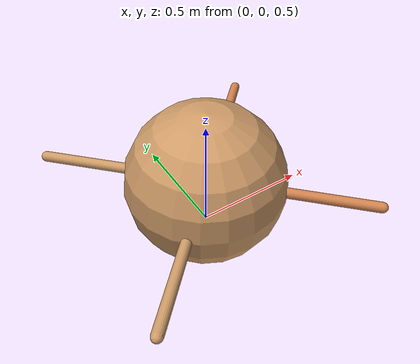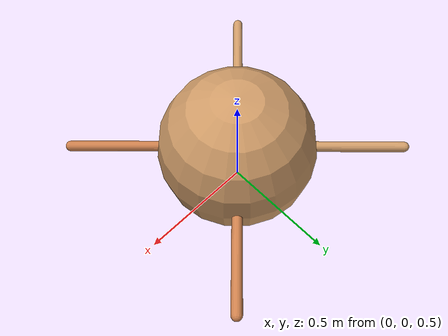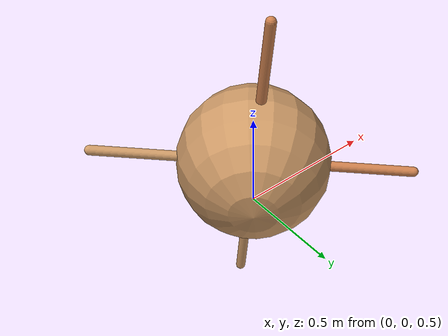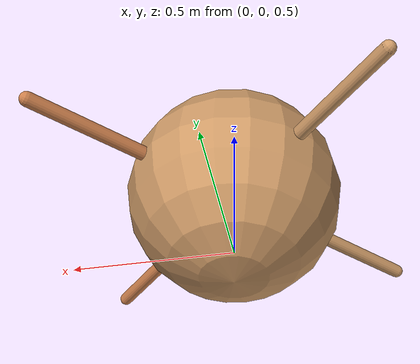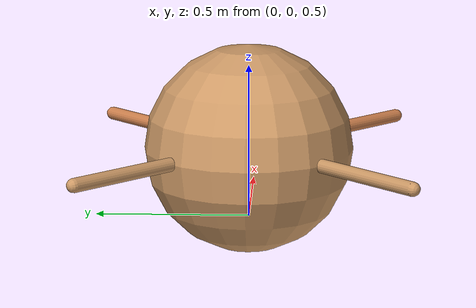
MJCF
<mujoco model="ant">
  <compiler angle="degree" coordinate="local" inertiafromgeom="true"/>
  <option integrator="RK4" timestep="0.01"/>
  <custom>
    <numeric data="0.0 0.0 0.55 1.0 0.0 0.0 0.0 0.0 1.0 0.0 -1.0 0.0 -1.0 0.0 1.0" name="init_qpos"/>
  </custom>
  <default>
    <joint armature="1" damping="1" limited="true"/>
    <geom conaffinity="0" condim="3" density="5.0" friction="1.5 0.1 0.1" margin="0.01" rgba="0.8 0.6 0.4 1"/>
  </default>
  <worldbody>
    <body name="torso" pos="0 0 0.7293096323836028">
      <geom name="torso_geom" pos="0 0 0" size="0.33801789120807824" type="sphere"/>
      <!--joint armature="0" damping="0" limited="false" margin="0.01" name="root" pos="0 0 0" type="free"/-->
      <body name="front_left_leg" pos="0 0 0">
        <geom fromto="0.0 0.0 0.0 0.030189418056774553 0.030189418056774553 0.0" name="aux_1_geom" size="0.08" type="capsule" rgba=".8 .5 .3 1"/>
        <body name="aux_1" pos="0.030189418056774553 0.030189418056774553 0">
          <joint axis="0 0 1" name="hip_1" pos="0.0 0.0 0.0" range="-40 40" type="hinge"/>
          <geom fromto="0.0 0.0 0.0 0.030189418056774553 0.030189418056774553 0.0" name="left_leg_geom" size="-0.14555642294021892" type="capsule" rgba=".8 .5 .3 1"/>
          <body pos="0.030189418056774553 0.030189418056774553 0" name="front_left_foot">
            <joint axis="-1 1 0" name="ankle_1" pos="0.0 0.0 0.0" range="30 100" type="hinge"/>
            <geom fromto="0.0 0.0 0.0 0.43872804753950634 0.43872804753950634 0.0" name="left_ankle_geom" size="-0.022250684363560355" type="capsule" rgba=".8 .5 .3 1"/>
          </body>
        </body>
      </body>
      <body name="front_right_leg" pos="0 0 0">
        <geom fromto="0.0 0.0 0.0 -0.030189418056774553 0.030189418056774553 0.0" name="aux_2_geom" size="0.08" type="capsule"/>
        <body name="aux_2" pos="-0.030189418056774553 0.030189418056774553 0">
          <joint axis="0 0 1" name="hip_2" pos="0.0 0.0 0.0" range="-40 40" type="hinge"/>
          <geom fromto="0.0 0.0 0.0 -0.030189418056774553 0.030189418056774553 0.0" name="right_leg_geom" size="-0.14555642294021892" type="capsule"/>
          <body pos="-0.030189418056774553 0.030189418056774553 0" name="front_right_foot">
            <joint axis="1 1 0" name="ankle_2" pos="0.0 0.0 0.0" range="-100 -30" type="hinge"/>
            <geom fromto="0.0 0.0 0.0 -0.43872804753950634 0.43872804753950634 0.0" name="right_ankle_geom" size="-0.022250684363560355" type="capsule"/>
          </body>
        </body>
      </body>
      <body name="left_back_leg" pos="0 0 0">
        <geom fromto="0.0 0.0 0.0 -0.030189418056774553 -0.030189418056774553 0.0" name="aux_3_geom" size="0.08" type="capsule"/>
        <body name="aux_3" pos="-0.030189418056774553 -0.030189418056774553 0">
          <joint axis="0 0 1" name="hip_3" pos="0.0 0.0 0.0" range="-40 40" type="hinge"/>
          <geom fromto="0.0 0.0 0.0 -0.030189418056774553 -0.030189418056774553 0.0" name="back_leg_geom" size="-0.14555642294021892" type="capsule"/>
          <body pos="-0.030189418056774553 -0.030189418056774553 0" name="left_back_foot">
            <joint axis="-1 1 0" name="ankle_3" pos="0.0 0.0 0.0" range="-100 -30" type="hinge"/>
            <geom fromto="0.0 0.0 0.0 -0.43872804753950634 -0.43872804753950634 0.0" name="third_ankle_geom" size="-0.022250684363560355" type="capsule"/>
          </body>
        </body>
      </body>
      <body name="right_back_leg" pos="0 0 0">
        <geom fromto="0.0 0.0 0.0 0.030189418056774553 -0.030189418056774553 0.0" name="aux_4_geom" size="0.08" type="capsule" rgba=".8 .5 .3 1"/>
        <body name="aux_4" pos="0.030189418056774553 -0.030189418056774553 0">
          <joint axis="0 0 1" name="hip_4" pos="0.0 0.0 0.0" range="-40 40" type="hinge"/>
          <geom fromto="0.0 0.0 0.0 0.030189418056774553 -0.030189418056774553 0.0" name="rightback_leg_geom" size="-0.14555642294021892" type="capsule" rgba=".8 .5 .3 1"/>
          <body pos="0.030189418056774553 -0.030189418056774553 0" name="right_back_foot">
            <joint axis="1 1 0" name="ankle_4" pos="0.0 0.0 0.0" range="30 100" type="hinge"/>
            <geom fromto="0.0 0.0 0.0 0.43872804753950634 -0.43872804753950634 0.0" name="fourth_ankle_geom" size="-0.022250684363560355" type="capsule" rgba=".8 .5 .3 1"/>
          </body>
        </body>
      </body>
    </body>
  </worldbody>
  <actuator>
    <motor ctrllimited="true" ctrlrange="-1.0 1.0" joint="hip_4" gear="150"/>
    <motor ctrllimited="true" ctrlrange="-1.0 1.0" joint="ankle_4" gear="150"/>
    <motor ctrllimited="true" ctrlrange="-1.0 1.0" joint="hip_1" gear="150"/>
    <motor ctrllimited="true" ctrlrange="-1.0 1.0" joint="ankle_1" gear="150"/>
    <motor ctrllimited="true" ctrlrange="-1.0 1.0" joint="hip_2" gear="150"/>
    <motor ctrllimited="true" ctrlrange="-1.0 1.0" joint="ankle_2" gear="150"/>
    <motor ctrllimited="true" ctrlrange="-1.0 1.0" joint="hip_3" gear="150"/>
    <motor ctrllimited="true" ctrlrange="-1.0 1.0" joint="ankle_3" gear="150"/>
  </actuator>
</mujoco>
